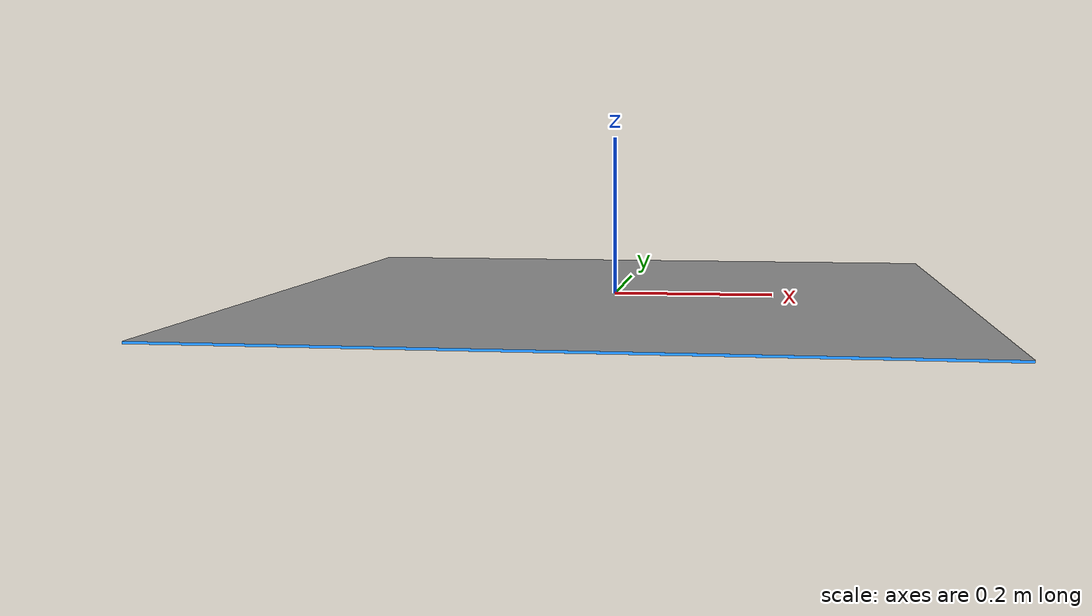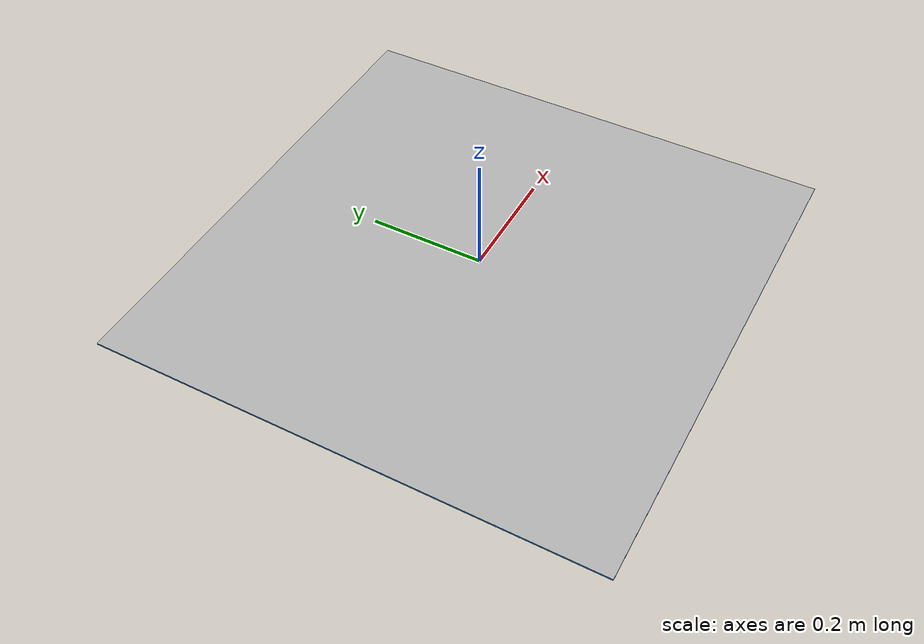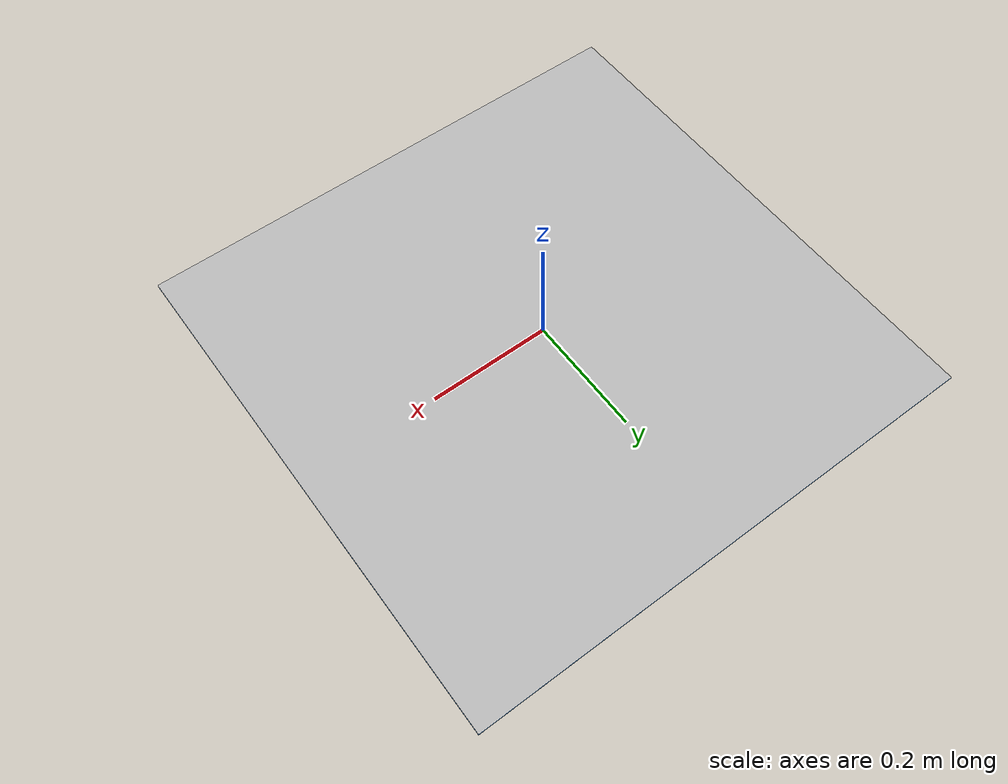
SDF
<!-- Made by Yee Hong Tham -->
<?xml version="1.0" ?>
<sdf version="1.5">
	<model name="monopoly">
		<static>true</static>
		<link name="link">
			<gravity>true</gravity>
			<enable_wind>true</enable_wind>
			<self_collide>false</self_collide>
			<inertial>
				<pose>1 0 1 0 0 0</pose>
				<mass>0.25</mass>
				<inertia>
					<ixx>1.8732639</ixx>
					<ixy>0.0</ixy>
					<ixz>0.0</ixz>
					<iyy>1.8732639</iyy>
					<iyz>0.0</iyz>
					<izz>3.745375</izz>
				</inertia>
			</inertial>
			<collision name="collision">
				<geometry>
					<mesh>
						<uri>model://monopoly/meshes/myMonopoly.dae</uri>
						<scale>1.75 1.75 1.75</scale>
					</mesh>
				</geometry>
				<friction>
					<ode>
						<mu>0</mu>
						<mu2>0</mu2> <!-- Need More Information -->
					</ode>
				</friction>
			</collision>

			<visual name="visual">
				<cast_shadows>true</cast_shadows>
				<transparency>0</transparency>

				<geometry>
					<mesh>
						<uri>model://monopoly/meshes/myMonopoly.dae</uri>
						<scale>1.75 1.75 1.75</scale>
					</mesh>
				</geometry>
			</visual>
		</link>
	</model>
</sdf>
